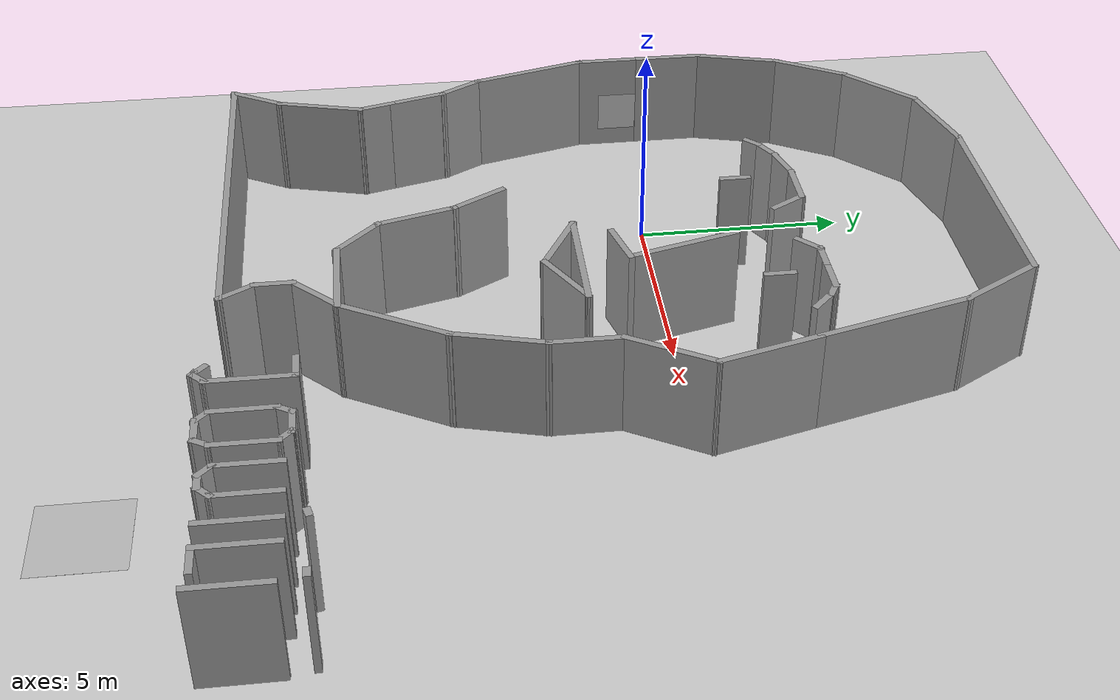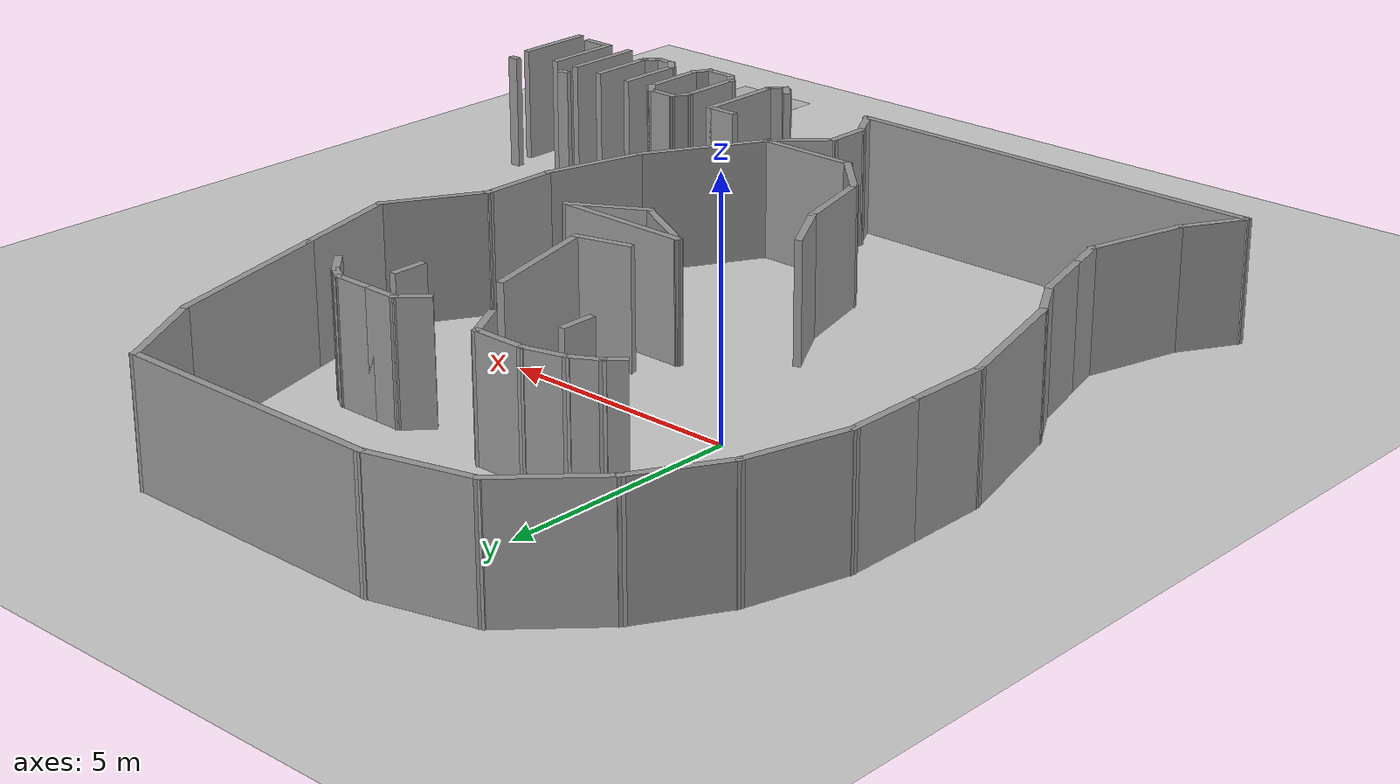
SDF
<sdf version="1.7">
 <world name="default">
  <light name="sun" type="directional">
   <pose>0 0 10 0 -0 0</pose>
   <diffuse>0.8 0.8 0.8 1</diffuse>
   <specular>0.2 0.2 0.2 1</specular>
   <attenuation>
    <range>1000</range>
    <constant>0.9</constant>
    <linear>0.01</linear>
    <quadratic>0.001</quadratic>
   </attenuation>
   <direction>-0.5 0.1 -0.9</direction>
   <spot><inner_angle>0</inner_angle><outer_angle>0</outer_angle><falloff>0</falloff></spot>
  </light>
  <model name="ground_plane">
   <static>1</static>
   <link name="link">
    <collision name="collision">
     <geometry><plane><normal>0 0 1</normal><size>100 100</size></plane></geometry>
     <surface>
      <contact><collide_bitmask>65535</collide_bitmask></contact>
      <friction><ode><mu>100</mu><mu2>50</mu2></ode></friction>
     </surface>
    </collision>
    <visual name="visual">
     <cast_shadows>0</cast_shadows>
     <geometry><plane><normal>0 0 1</normal><size>100 100</size></plane></geometry>
     <material>
      <script><uri>file://media/materials/scripts/gazebo.material</uri><name>Gazebo/Grey</name></script>
     </material>
    </visual>
   </link>
  </model>
  <gravity>0 0 -9.8</gravity>
  <magnetic_field>6e-06 2.3e-05 -4.2e-05</magnetic_field>
  <atmosphere type="adiabatic"/>
  <physics type="ode">
   <max_step_size>0.001</max_step_size>
   <real_time_factor>1</real_time_factor>
   <real_time_update_rate>1000</real_time_update_rate>
  </physics>
  <scene><ambient>0.4 0.4 0.4 1</ambient><background>0.7 0.7 0.7 1</background><shadows>1</shadows></scene>
  <spherical_coordinates>
   <surface_model>EARTH_WGS84</surface_model>
   <latitude_deg>0</latitude_deg>
   <longitude_deg>0</longitude_deg>
   <elevation>0</elevation>
   <heading_deg>0</heading_deg>
  </spherical_coordinates>
  <model name="my_ground_plane">
   <static>1</static>
   <link name="link">
    <collision name="collision">
     <geometry><plane><normal>0 0 1</normal><size>1 1</size></plane></geometry>
     <surface><friction><ode><mu>100</mu><mu2>50</mu2></ode></friction></surface>
    </collision>
    <visual name="visual">
     <cast_shadows>0</cast_shadows>
     <geometry><plane><normal>0 0 1</normal><size>1 1</size></plane></geometry>
     <material>
      <script>
       <uri>model://my_ground_plane/materials/scripts</uri>
       <uri>model://my_ground_plane/materials/textures</uri>
       <name>MyGroundPlane/Image</name>
      </script>
     </material>
    </visual>
   </link>
   <pose>-4.6 0 1 1.5354 0.02 1.6</pose>
  </model>
  <model name="jouili">
   <pose>4.47971 -1.31638 0 0 -0 0</pose>
   <link name="Wall_101">
    <collision name="Wall_101_Collision">
     <geometry><box><size>0.25 0.15 2.5</size></box></geometry>
     <pose>0 0 1.25 0 -0 0</pose>
    </collision>
    <visual name="Wall_101_Visual">
     <pose>0 0 1.25 0 -0 0</pose>
     <geometry><box><size>0.25 0.15 2.5</size></box></geometry>
     <material>
      <script><uri>file://media/materials/scripts/gazebo.material</uri><name>Gazebo/Grey</name></script>
      <ambient>1 1 1 1</ambient>
     </material>
     <meta><layer>0</layer></meta>
    </visual>
    <pose>9.05361 -6.80328 0 0 -0 0</pose>
   </link>
   <link name="Wall_103">
    <collision name="Wall_103_Collision">
     <geometry><box><size>0.5 0.15 2.5</size></box></geometry>
     <pose>0 0 1.25 0 -0 0</pose>
    </collision>
    <visual name="Wall_103_Visual">
     <pose>0 0 1.25 0 -0 0</pose>
     <geometry><box><size>0.5 0.15 2.5</size></box></geometry>
     <material>
      <script><uri>file://media/materials/scripts/gazebo.material</uri><name>Gazebo/Grey</name></script>
      <ambient>1 1 1 1</ambient>
     </material>
     <meta><layer>0</layer></meta>
    </visual>
    <pose>3.02089 -9.02899 0 0 -0 2.35619</pose>
   </link>
   <link name="Wall_11">
    <collision name="Wall_11_Collision">
     <geometry><box><size>1.5 0.15 2.5</size></box></geometry>
     <pose>0 0 1.25 0 -0 0</pose>
    </collision>
    <visual name="Wall_11_Visual">
     <pose>0 0 1.25 0 -0 0</pose>
     <geometry><box><size>1.5 0.15 2.5</size></box></geometry>
     <material>
      <script><uri>file://media/materials/scripts/gazebo.material</uri><name>Gazebo/Grey</name></script>
      <ambient>1 1 1 1</ambient>
     </material>
     <meta><layer>0</layer></meta>
    </visual>
    <pose>-8.22475 -8.14626 0 0 -0 1.0472</pose>
   </link>
   <link name="Wall_12">
    <collision name="Wall_12_Collision">
     <geometry><box><size>2.25 0.15 2.5</size></box></geometry>
     <pose>0 0 1.25 0 -0 0</pose>
    </collision>
    <visual name="Wall_12_Visual">
     <pose>0 0 1.25 0 -0 0</pose>
     <geometry><box><size>2.25 0.15 2.5</size></box></geometry>
     <material>
      <script><uri>file://media/materials/scripts/gazebo.material</uri><name>Gazebo/Grey</name></script>
      <ambient>1 1 1 1</ambient>
     </material>
     <meta><layer>0</layer></meta>
    </visual>
    <pose>-7.61548 -6.54746 0 0 -0 1.309</pose>
   </link>
   <link name="Wall_13">
    <collision name="Wall_13_Collision">
     <geometry><box><size>1 0.15 2.5</size></box></geometry>
     <pose>0 0 1.25 0 -0 0</pose>
    </collision>
    <visual name="Wall_13_Visual">
     <pose>0 0 1.25 0 -0 0</pose>
     <geometry><box><size>1 0.15 2.5</size></box></geometry>
     <material>
      <script><uri>file://media/materials/scripts/gazebo.material</uri><name>Gazebo/Grey</name></script>
      <ambient>1 1 1 1</ambient>
     </material>
     <meta><layer>0</layer></meta>
    </visual>
    <pose>-7.45372 -5.12272 0 0 -0 1.8326</pose>
   </link>
   <link name="Wall_14">
    <collision name="Wall_14_Collision">
     <geometry><box><size>1.5 0.15 2.5</size></box></geometry>
     <pose>0 0 1.25 0 -0 0</pose>
    </collision>
    <visual name="Wall_14_Visual">
     <pose>0 0 1.25 0 -0 0</pose>
     <geometry><box><size>1.5 0.15 2.5</size></box></geometry>
     <material>
      <script><uri>file://media/materials/scripts/gazebo.material</uri><name>Gazebo/Grey</name></script>
      <ambient>1 1 1 1</ambient>
     </material>
     <meta><layer>0</layer></meta>
    </visual>
    <pose>-7.73842 -4.06021 0 0 -0 1.8326</pose>
   </link>
   <link name="Wall_15">
    <collision name="Wall_15_Collision">
     <geometry><box><size>1.25 0.15 2.5</size></box></geometry>
     <pose>0 0 1.25 0 -0 0</pose>
    </collision>
    <visual name="Wall_15_Visual">
     <pose>0 0 1.25 0 -0 0</pose>
     <geometry><box><size>1.25 0.15 2.5</size></box></geometry>
     <material>
      <script><uri>file://media/materials/scripts/gazebo.material</uri><name>Gazebo/Grey</name></script>
      <ambient>1 1 1 1</ambient>
     </material>
     <meta><layer>0</layer></meta>
    </visual>
    <pose>-8.18813 -2.93189 0 0 -0 2.0944</pose>
   </link>
   <link name="Wall_16">
    <collision name="Wall_16_Collision">
     <geometry><box><size>3 0.15 2.5</size></box></geometry>
     <pose>0 0 1.25 0 -0 0</pose>
    </collision>
    <visual name="Wall_16_Visual">
     <pose>0 0 1.25 0 -0 0</pose>
     <geometry><box><size>3 0.15 2.5</size></box></geometry>
     <material>
      <script><uri>file://media/materials/scripts/gazebo.material</uri><name>Gazebo/Grey</name></script>
      <ambient>1 1 1 1</ambient>
     </material>
     <meta><layer>0</layer></meta>
    </visual>
    <pose>-8.83194 -1.07913 0 0 -0 1.8326</pose>
   </link>
   <link name="Wall_17">
    <collision name="Wall_17_Collision">
     <geometry><box><size>1.75 0.15 2.5</size></box></geometry>
     <pose>0 0 1.25 0 -0 0</pose>
    </collision>
    <visual name="Wall_17_Visual">
     <pose>0 0 1.25 0 -0 0</pose>
     <geometry><box><size>1.75 0.15 2.5</size></box></geometry>
     <material>
      <script><uri>file://media/materials/scripts/gazebo.material</uri><name>Gazebo/Grey</name></script>
      <ambient>1 1 1 1</ambient>
     </material>
     <meta><layer>0</layer></meta>
    </visual>
    <pose>-9.20076 1.09731 0 0 -0 1.5708</pose>
   </link>
   <link name="Wall_18">
    <collision name="Wall_18_Collision">
     <geometry><box><size>1.75 0.15 2.5</size></box></geometry>
     <pose>0 0 1.25 0 -0 0</pose>
    </collision>
    <visual name="Wall_18_Visual">
     <pose>0 0 1.25 0 -0 0</pose>
     <geometry><box><size>1.75 0.15 2.5</size></box></geometry>
     <material>
      <script><uri>file://media/materials/scripts/gazebo.material</uri><name>Gazebo/Grey</name></script>
      <ambient>1 1 1 1</ambient>
     </material>
     <meta><layer>0</layer></meta>
    </visual>
    <pose>-9.20076 2.69731 0 0 -0 1.5708</pose>
   </link>
   <link name="Wall_19">
    <collision name="Wall_19_Collision">
     <geometry><box><size>2.25 0.15 2.5</size></box></geometry>
     <pose>0 0 1.25 0 -0 0</pose>
    </collision>
    <visual name="Wall_19_Visual">
     <pose>0 0 1.25 0 -0 0</pose>
     <geometry><box><size>2.25 0.15 2.5</size></box></geometry>
     <material>
      <script><uri>file://media/materials/scripts/gazebo.material</uri><name>Gazebo/Grey</name></script>
      <ambient>1 1 1 1</ambient>
     </material>
     <meta><layer>0</layer></meta>
    </visual>
    <pose>-8.929 4.51153 0 0 -0 1.309</pose>
   </link>
   <link name="Wall_2">
    <collision name="Wall_2_Collision">
     <geometry><box><size>9.25 0.15 2.5</size></box></geometry>
     <pose>0 0 1.25 0 -0 0</pose>
    </collision>
    <visual name="Wall_2_Visual">
     <pose>0 0 1.25 0 -0 0</pose>
     <geometry><box><size>9.25 0.15 2.5</size></box></geometry>
     <material>
      <script><uri>file://media/materials/scripts/gazebo.material</uri><name>Gazebo/Grey</name></script>
      <ambient>1 1 1 1</ambient>
     </material>
     <meta><layer>0</layer></meta>
    </visual>
    <pose>-4.01225 -8.73082 0 0 -0 0</pose>
   </link>
   <link name="Wall_20">
    <collision name="Wall_20_Collision">
     <geometry><box><size>2 0.15 2.5</size></box></geometry>
     <pose>0 0 1.25 0 -0 0</pose>
    </collision>
    <visual name="Wall_20_Visual">
     <pose>0 0 1.25 0 -0 0</pose>
     <geometry><box><size>2 0.15 2.5</size></box></geometry>
     <material>
      <script><uri>file://media/materials/scripts/gazebo.material</uri><name>Gazebo/Grey</name></script>
      <ambient>1 1 1 1</ambient>
     </material>
     <meta><layer>0</layer></meta>
    </visual>
    <pose>-8.19474 6.32683 0 0 -0 1.0472</pose>
   </link>
   <link name="Wall_21">
    <collision name="Wall_21_Collision">
     <geometry><box><size>2.25 0.15 2.5</size></box></geometry>
     <pose>0 0 1.25 0 -0 0</pose>
    </collision>
    <visual name="Wall_21_Visual">
     <pose>0 0 1.25 0 -0 0</pose>
     <geometry><box><size>2.25 0.15 2.5</size></box></geometry>
     <material>
      <script><uri>file://media/materials/scripts/gazebo.material</uri><name>Gazebo/Grey</name></script>
      <ambient>1 1 1 1</ambient>
     </material>
     <meta><layer>0</layer></meta>
    </visual>
    <pose>-6.98978 7.87036 0 0 -0 0.785398</pose>
   </link>
   <link name="Wall_23">
    <collision name="Wall_23_Collision">
     <geometry><box><size>2.25 0.15 2.5</size></box></geometry>
     <pose>0 0 1.25 0 -0 0</pose>
    </collision>
    <visual name="Wall_23_Visual">
     <pose>0 0 1.25 0 -0 0</pose>
     <geometry><box><size>2.25 0.15 2.5</size></box></geometry>
     <material>
      <script><uri>file://media/materials/scripts/gazebo.material</uri><name>Gazebo/Grey</name></script>
      <ambient>1 1 1 1</ambient>
     </material>
     <meta><layer>0</layer></meta>
    </visual>
    <pose>-5.23309 8.88458 0 0 -0 0.261799</pose>
   </link>
   <link name="Wall_24">
    <collision name="Wall_24_Collision">
     <geometry><box><size>5.75 0.15 2.5</size></box></geometry>
     <pose>0 0 1.25 0 -0 0</pose>
    </collision>
    <visual name="Wall_24_Visual">
     <pose>0 0 1.25 0 -0 0</pose>
     <geometry><box><size>5.75 0.15 2.5</size></box></geometry>
     <material>
      <script><uri>file://media/materials/scripts/gazebo.material</uri><name>Gazebo/Grey</name></script>
      <ambient>1 1 1 1</ambient>
     </material>
     <meta><layer>0</layer></meta>
    </visual>
    <pose>-1.41887 9.15634 0 0 -0 0</pose>
   </link>
   <link name="Wall_25">
    <collision name="Wall_25_Collision">
     <geometry><box><size>2.25 0.15 2.5</size></box></geometry>
     <pose>0 0 1.25 0 -0 0</pose>
    </collision>
    <visual name="Wall_25_Visual">
     <pose>0 0 1.25 0 -0 0</pose>
     <geometry><box><size>2.25 0.15 2.5</size></box></geometry>
     <material>
      <script><uri>file://media/materials/scripts/gazebo.material</uri><name>Gazebo/Grey</name></script>
      <ambient>1 1 1 1</ambient>
     </material>
     <meta><layer>0</layer></meta>
    </visual>
    <pose>1.90613 8.24702 0 0 -0 -1.0472</pose>
   </link>
   <link name="Wall_26">
    <collision name="Wall_26_Collision">
     <geometry><box><size>3.75 0.15 2.5</size></box></geometry>
     <pose>0 0 1.25 0 -0 0</pose>
    </collision>
    <visual name="Wall_26_Visual">
     <pose>0 0 1.25 0 -0 0</pose>
     <geometry><box><size>3.75 0.15 2.5</size></box></geometry>
     <material>
      <script><uri>file://media/materials/scripts/gazebo.material</uri><name>Gazebo/Grey</name></script>
      <ambient>1 1 1 1</ambient>
     </material>
     <meta><layer>0</layer></meta>
    </visual>
    <pose>2.897 5.59903 0 0 -0 -1.309</pose>
   </link>
   <link name="Wall_27">
    <collision name="Wall_27_Collision">
     <geometry><box><size>2.5 0.15 2.5</size></box></geometry>
     <pose>0 0 1.25 0 -0 0</pose>
    </collision>
    <visual name="Wall_27_Visual">
     <pose>0 0 1.25 0 -0 0</pose>
     <geometry><box><size>2.5 0.15 2.5</size></box></geometry>
     <material>
      <script><uri>file://media/materials/scripts/gazebo.material</uri><name>Gazebo/Grey</name></script>
      <ambient>1 1 1 1</ambient>
     </material>
     <meta><layer>0</layer></meta>
    </visual>
    <pose>3.66699 2.7254 0 0 -0 -1.309</pose>
   </link>
   <link name="Wall_28">
    <collision name="Wall_28_Collision">
     <geometry><box><size>2.25 0.15 2.5</size></box></geometry>
     <pose>0 0 1.25 0 -0 0</pose>
    </collision>
    <visual name="Wall_28_Visual">
     <pose>0 0 1.25 0 -0 0</pose>
     <geometry><box><size>2.25 0.15 2.5</size></box></geometry>
     <material>
      <script><uri>file://media/materials/scripts/gazebo.material</uri><name>Gazebo/Grey</name></script>
      <ambient>1 1 1 1</ambient>
     </material>
     <meta><layer>0</layer></meta>
    </visual>
    <pose>3.4461 0.681107 0 0 -0 -2.0944</pose>
   </link>
   <link name="Wall_29">
    <collision name="Wall_29_Collision">
     <geometry><box><size>1.75 0.15 2.5</size></box></geometry>
     <pose>0 0 1.25 0 -0 0</pose>
    </collision>
    <visual name="Wall_29_Visual">
     <pose>0 0 1.25 0 -0 0</pose>
     <geometry><box><size>1.75 0.15 2.5</size></box></geometry>
     <material>
      <script><uri>file://media/materials/scripts/gazebo.material</uri><name>Gazebo/Grey</name></script>
      <ambient>1 1 1 1</ambient>
     </material>
     <meta><layer>0</layer></meta>
    </visual>
    <pose>2.9211 -1.02822 0 0 -0 -1.5708</pose>
   </link>
   <link name="Wall_3">
    <collision name="Wall_3_Collision">
     <geometry><box><size>1 0.15 2.5</size></box></geometry>
     <pose>0 0 1.25 0 -0 0</pose>
    </collision>
    <visual name="Wall_3_Visual">
     <pose>0 0 1.25 0 -0 0</pose>
     <geometry><box><size>1 0.15 2.5</size></box></geometry>
     <material>
      <script><uri>file://media/materials/scripts/gazebo.material</uri><name>Gazebo/Grey</name></script>
      <ambient>1 1 1 1</ambient>
     </material>
     <meta><layer>0</layer></meta>
    </visual>
    <pose>0.325255 -8.36276 0 0 -0 2.0944</pose>
   </link>
   <link name="Wall_31">
    <collision name="Wall_31_Collision">
     <geometry><box><size>2.25 0.15 2.5</size></box></geometry>
     <pose>0 0 1.25 0 -0 0</pose>
    </collision>
    <visual name="Wall_31_Visual">
     <pose>0 0 1.25 0 -0 0</pose>
     <geometry><box><size>2.25 0.15 2.5</size></box></geometry>
     <material>
      <script><uri>file://media/materials/scripts/gazebo.material</uri><name>Gazebo/Grey</name></script>
      <ambient>1 1 1 1</ambient>
     </material>
     <meta><layer>0</layer></meta>
    </visual>
    <pose>2.64934 -2.84244 0 0 -0 -1.8326</pose>
   </link>
   <link name="Wall_32">
    <collision name="Wall_32_Collision">
     <geometry><box><size>2.82613 0.15 2.5</size></box></geometry>
     <pose>0 0 1.25 0 -0 0</pose>
    </collision>
    <visual name="Wall_32_Visual">
     <pose>0 0 1.25 0 -0 0</pose>
     <geometry><box><size>2.82613 0.15 2.5</size></box></geometry>
     <material>
      <script><uri>file://media/materials/scripts/gazebo.material</uri><name>Gazebo/Grey</name></script>
      <ambient>1 1 1 1</ambient>
     </material>
     <meta><layer>0</layer></meta>
    </visual>
    <pose>1.72246 -5.02339 0 0 -0 -2.08243</pose>
   </link>
   <link name="Wall_34">
    <collision name="Wall_34_Collision">
     <geometry><box><size>0.5 0.15 2.5</size></box></geometry>
     <pose>0 0 1.25 0 -0 0</pose>
    </collision>
    <visual name="Wall_34_Visual">
     <pose>0 0 1.25 0 -0 0</pose>
     <geometry><box><size>0.5 0.15 2.5</size></box></geometry>
     <material>
      <script><uri>file://media/materials/scripts/gazebo.material</uri><name>Gazebo/Grey</name></script>
      <ambient>1 1 1 1</ambient>
     </material>
     <meta><layer>0</layer></meta>
    </visual>
    <pose>-4.57449 4.03651 0 0 -0 0.785398</pose>
   </link>
   <link name="Wall_35">
    <collision name="Wall_35_Collision">
     <geometry><box><size>0.75 0.15 2.5</size></box></geometry>
     <pose>0 0 1.25 0 -0 0</pose>
    </collision>
    <visual name="Wall_35_Visual">
     <pose>0 0 1.25 0 -0 0</pose>
     <geometry><box><size>0.75 0.15 2.5</size></box></geometry>
     <material>
      <script><uri>file://media/materials/scripts/gazebo.material</uri><name>Gazebo/Grey</name></script>
      <ambient>1 1 1 1</ambient>
     </material>
     <meta><layer>0</layer></meta>
    </visual>
    <pose>-4.19094 4.31026 0 0 -0 0.523599</pose>
   </link>
   <link name="Wall_36">
    <collision name="Wall_36_Collision">
     <geometry><box><size>1 0.15 2.5</size></box></geometry>
     <pose>0 0 1.25 0 -0 0</pose>
    </collision>
    <visual name="Wall_36_Visual">
     <pose>0 0 1.25 0 -0 0</pose>
     <geometry><box><size>1 0.15 2.5</size></box></geometry>
     <material>
      <script><uri>file://media/materials/scripts/gazebo.material</uri><name>Gazebo/Grey</name></script>
      <ambient>1 1 1 1</ambient>
     </material>
     <meta><layer>0</layer></meta>
    </visual>
    <pose>-3.52061 4.57025 0 0 -0 0.261799</pose>
   </link>
   <link name="Wall_37">
    <collision name="Wall_37_Collision">
     <geometry><box><size>1.25 0.15 2.5</size></box></geometry>
     <pose>0 0 1.25 0 -0 0</pose>
    </collision>
    <visual name="Wall_37_Visual">
     <pose>0 0 1.25 0 -0 0</pose>
     <geometry><box><size>1.25 0.15 2.5</size></box></geometry>
     <material>
      <script><uri>file://media/materials/scripts/gazebo.material</uri><name>Gazebo/Grey</name></script>
      <ambient>1 1 1 1</ambient>
     </material>
     <meta><layer>0</layer></meta>
    </visual>
    <pose>-2.56009 4.68025 0 0 -0 0</pose>
   </link>
   <link name="Wall_38">
    <collision name="Wall_38_Collision">
     <geometry><box><size>1 0.15 2.5</size></box></geometry>
     <pose>0 0 1.25 0 -0 0</pose>
    </collision>
    <visual name="Wall_38_Visual">
     <pose>0 0 1.25 0 -0 0</pose>
     <geometry><box><size>1 0.15 2.5</size></box></geometry>
     <material>
      <script><uri>file://media/materials/scripts/gazebo.material</uri><name>Gazebo/Grey</name></script>
      <ambient>1 1 1 1</ambient>
     </material>
     <meta><layer>0</layer></meta>
    </visual>
    <pose>-1.79759 4.31219 0 0 -0 -1.0472</pose>
   </link>
   <link name="Wall_4">
    <collision name="Wall_4_Collision">
     <geometry><box><size>1 0.15 2.5</size></box></geometry>
     <pose>0 0 1.25 0 -0 0</pose>
    </collision>
    <visual name="Wall_4_Visual">
     <pose>0 0 1.25 0 -0 0</pose>
     <geometry><box><size>1 0.15 2.5</size></box></geometry>
     <material>
      <script><uri>file://media/materials/scripts/gazebo.material</uri><name>Gazebo/Grey</name></script>
      <ambient>1 1 1 1</ambient>
     </material>
     <meta><layer>0</layer></meta>
    </visual>
    <pose>0.112755 -7.5697 0 0 -0 1.5708</pose>
   </link>
   <link name="Wall_40">
    <collision name="Wall_40_Collision">
     <geometry><box><size>0.75 0.15 2.5</size></box></geometry>
     <pose>0 0 1.25 0 -0 0</pose>
    </collision>
    <visual name="Wall_40_Visual">
     <pose>0 0 1.25 0 -0 0</pose>
     <geometry><box><size>0.75 0.15 2.5</size></box></geometry>
     <material>
      <script><uri>file://media/materials/scripts/gazebo.material</uri><name>Gazebo/Grey</name></script>
      <ambient>1 1 1 1</ambient>
     </material>
     <meta><layer>0</layer></meta>
    </visual>
    <pose>-2.98615 3.29175 0 0 -0 -1.5708</pose>
   </link>
   <link name="Wall_42">
    <collision name="Wall_42_Collision">
     <geometry><box><size>0.75 0.15 2.5</size></box></geometry>
     <pose>0 0 1.25 0 -0 0</pose>
    </collision>
    <visual name="Wall_42_Visual">
     <pose>0 0 1.25 0 -0 0</pose>
     <geometry><box><size>0.75 0.15 2.5</size></box></geometry>
     <material>
      <script><uri>file://media/materials/scripts/gazebo.material</uri><name>Gazebo/Grey</name></script>
      <ambient>1 1 1 1</ambient>
     </material>
     <meta><layer>0</layer></meta>
    </visual>
    <pose>-0.045393 4.39241 0 0 -0 0.785398</pose>
   </link>
   <link name="Wall_43">
    <collision name="Wall_43_Collision">
     <geometry><box><size>0.75 0.15 2.5</size></box></geometry>
     <pose>0 0 1.25 0 -0 0</pose>
    </collision>
    <visual name="Wall_43_Visual">
     <pose>0 0 1.25 0 -0 0</pose>
     <geometry><box><size>0.75 0.15 2.5</size></box></geometry>
     <material>
      <script><uri>file://media/materials/scripts/gazebo.material</uri><name>Gazebo/Grey</name></script>
      <ambient>1 1 1 1</ambient>
     </material>
     <meta><layer>0</layer></meta>
    </visual>
    <pose>0.466739 4.60454 0 0 -0 0</pose>
   </link>
   <link name="Wall_44">
    <collision name="Wall_44_Collision">
     <geometry><box><size>1 0.15 2.5</size></box></geometry>
     <pose>0 0 1.25 0 -0 0</pose>
    </collision>
    <visual name="Wall_44_Visual">
     <pose>0 0 1.25 0 -0 0</pose>
     <geometry><box><size>1 0.15 2.5</size></box></geometry>
     <material>
      <script><uri>file://media/materials/scripts/gazebo.material</uri><name>Gazebo/Grey</name></script>
      <ambient>1 1 1 1</ambient>
     </material>
     <meta><layer>0</layer></meta>
    </visual>
    <pose>1.19174 4.60454 0 0 -0 0</pose>
   </link>
   <link name="Wall_45">
    <collision name="Wall_45_Collision">
     <geometry><box><size>0.5 0.15 2.5</size></box></geometry>
     <pose>0 0 1.25 0 -0 0</pose>
    </collision>
    <visual name="Wall_45_Visual">
     <pose>0 0 1.25 0 -0 0</pose>
     <geometry><box><size>0.5 0.15 2.5</size></box></geometry>
     <material>
      <script><uri>file://media/materials/scripts/gazebo.material</uri><name>Gazebo/Grey</name></script>
      <ambient>1 1 1 1</ambient>
     </material>
     <meta><layer>0</layer></meta>
    </visual>
    <pose>1.76829 4.51705 0 0 -0 -0.523599</pose>
   </link>
   <link name="Wall_46">
    <collision name="Wall_46_Collision">
     <geometry><box><size>0.75 0.15 2.5</size></box></geometry>
     <pose>0 0 1.25 0 -0 0</pose>
    </collision>
    <visual name="Wall_46_Visual">
     <pose>0 0 1.25 0 -0 0</pose>
     <geometry><box><size>0.75 0.15 2.5</size></box></geometry>
     <material>
      <script><uri>file://media/materials/scripts/gazebo.material</uri><name>Gazebo/Grey</name></script>
      <ambient>1 1 1 1</ambient>
     </material>
     <meta><layer>0</layer></meta>
    </visual>
    <pose>2.13198 4.21741 0 0 -0 -0.785398</pose>
   </link>
   <link name="Wall_48">
    <collision name="Wall_48_Collision">
     <geometry><box><size>0.75 0.15 2.5</size></box></geometry>
     <pose>0 0 1.25 0 -0 0</pose>
    </collision>
    <visual name="Wall_48_Visual">
     <pose>0 0 1.25 0 -0 0</pose>
     <geometry><box><size>0.75 0.15 2.5</size></box></geometry>
     <material>
      <script><uri>file://media/materials/scripts/gazebo.material</uri><name>Gazebo/Grey</name></script>
      <ambient>1 1 1 1</ambient>
     </material>
     <meta><layer>0</layer></meta>
    </visual>
    <pose>1.02653 3.50576 0 0 -0 -1.5708</pose>
   </link>
   <link name="Wall_5">
    <collision name="Wall_5_Collision">
     <geometry><box><size>1.5 0.15 2.5</size></box></geometry>
     <pose>0 0 1.25 0 -0 0</pose>
    </collision>
    <visual name="Wall_5_Visual">
     <pose>0 0 1.25 0 -0 0</pose>
     <geometry><box><size>1.5 0.15 2.5</size></box></geometry>
     <material>
      <script><uri>file://media/materials/scripts/gazebo.material</uri><name>Gazebo/Grey</name></script>
      <ambient>1 1 1 1</ambient>
     </material>
     <meta><layer>0</layer></meta>
    </visual>
    <pose>0.590052 -6.6674 0 0 -0 0.785398</pose>
   </link>
   <link name="Wall_50">
    <collision name="Wall_50_Collision">
     <geometry><box><size>3 0.15 2.5</size></box></geometry>
     <pose>0 0 1.25 0 -0 0</pose>
    </collision>
    <visual name="Wall_50_Visual">
     <pose>0 0 1.25 0 -0 0</pose>
     <geometry><box><size>3 0.15 2.5</size></box></geometry>
     <material>
      <script><uri>file://media/materials/scripts/gazebo.material</uri><name>Gazebo/Grey</name></script>
      <ambient>1 1 1 1</ambient>
     </material>
     <meta><layer>0</layer></meta>
    </visual>
    <pose>-0.063083 -0.795451 0 0 -0 0</pose>
   </link>
   <link name="Wall_51">
    <collision name="Wall_51_Collision">
     <geometry><box><size>1.75 0.15 2.5</size></box></geometry>
     <pose>0 0 1.25 0 -0 0</pose>
    </collision>
    <visual name="Wall_51_Visual">
     <pose>0 0 1.25 0 -0 0</pose>
     <geometry><box><size>1.75 0.15 2.5</size></box></geometry>
     <material>
      <script><uri>file://media/materials/scripts/gazebo.material</uri><name>Gazebo/Grey</name></script>
      <ambient>1 1 1 1</ambient>
     </material>
     <meta><layer>0</layer></meta>
    </visual>
    <pose>0.669097 -1.19545 0 0 -0 -2.61799</pose>
   </link>
   <link name="Wall_52">
    <collision name="Wall_52_Collision">
     <geometry><box><size>1.81864 0.15 2.5</size></box></geometry>
     <pose>0 0 1.25 0 -0 0</pose>
    </collision>
    <visual name="Wall_52_Visual">
     <pose>0 0 1.25 0 -0 0</pose>
     <geometry><box><size>1.81864 0.15 2.5</size></box></geometry>
     <material>
      <script><uri>file://media/materials/scripts/gazebo.material</uri><name>Gazebo/Grey</name></script>
      <ambient>1 1 1 1</ambient>
     </material>
     <meta><layer>0</layer></meta>
    </visual>
    <pose>-0.755903 -1.19545 0 0 -0 2.64158</pose>
   </link>
   <link name="Wall_54">
    <collision name="Wall_54_Collision">
     <geometry><box><size>2.75 0.15 2.5</size></box></geometry>
     <pose>0 0 1.25 0 -0 0</pose>
    </collision>
    <visual name="Wall_54_Visual">
     <pose>0 0 1.25 0 -0 0</pose>
     <geometry><box><size>2.75 0.15 2.5</size></box></geometry>
     <material>
      <script><uri>file://media/materials/scripts/gazebo.material</uri><name>Gazebo/Grey</name></script>
      <ambient>1 1 1 1</ambient>
     </material>
     <meta><layer>0</layer></meta>
    </visual>
    <pose>-0.349081 1.58702 0 0 -0 -1.309</pose>
   </link>
   <link name="Wall_55">
    <collision name="Wall_55_Collision">
     <geometry><box><size>1.25 0.15 2.5</size></box></geometry>
     <pose>0 0 1.25 0 -0 0</pose>
    </collision>
    <visual name="Wall_55_Visual">
     <pose>0 0 1.25 0 -0 0</pose>
     <geometry><box><size>1.25 0.15 2.5</size></box></geometry>
     <material>
      <script><uri>file://media/materials/scripts/gazebo.material</uri><name>Gazebo/Grey</name></script>
      <ambient>1 1 1 1</ambient>
     </material>
     <meta><layer>0</layer></meta>
    </visual>
    <pose>-0.543875 0.188961 0 0 -0 -2.87979</pose>
   </link>
   <link name="Wall_57">
    <collision name="Wall_57_Collision">
     <geometry><box><size>0.75 0.15 2.5</size></box></geometry>
     <pose>0 0 1.25 0 -0 0</pose>
    </collision>
    <visual name="Wall_57_Visual">
     <pose>0 0 1.25 0 -0 0</pose>
     <geometry><box><size>0.75 0.15 2.5</size></box></geometry>
     <material>
      <script><uri>file://media/materials/scripts/gazebo.material</uri><name>Gazebo/Grey</name></script>
      <ambient>1 1 1 1</ambient>
     </material>
     <meta><layer>0</layer></meta>
    </visual>
    <pose>3.09212 -7.05524 0 0 -0 0</pose>
   </link>
   <link name="Wall_59">
    <collision name="Wall_59_Collision">
     <geometry><box><size>2 0.15 2.5</size></box></geometry>
     <pose>0 0 1.25 0 -0 0</pose>
    </collision>
    <visual name="Wall_59_Visual">
     <pose>0 0 1.25 0 -0 0</pose>
     <geometry><box><size>2 0.15 2.5</size></box></geometry>
     <material>
      <script><uri>file://media/materials/scripts/gazebo.material</uri><name>Gazebo/Grey</name></script>
      <ambient>1 1 1 1</ambient>
     </material>
     <meta><layer>0</layer></meta>
    </visual>
    <pose>3.39212 -7.98024 0 0 -0 -1.5708</pose>
   </link>
   <link name="Wall_6">
    <collision name="Wall_6_Collision">
     <geometry><box><size>2.25 0.15 2.5</size></box></geometry>
     <pose>0 0 1.25 0 -0 0</pose>
    </collision>
    <visual name="Wall_6_Visual">
     <pose>0 0 1.25 0 -0 0</pose>
     <geometry><box><size>2.25 0.15 2.5</size></box></geometry>
     <material>
      <script><uri>file://media/materials/scripts/gazebo.material</uri><name>Gazebo/Grey</name></script>
      <ambient>1 1 1 1</ambient>
     </material>
     <meta><layer>0</layer></meta>
    </visual>
    <pose>0.017349 -6.19011 0 0 -0 3.14159</pose>
   </link>
   <link name="Wall_60">
    <collision name="Wall_60_Collision">
     <geometry><box><size>0.5 0.15 2.5</size></box></geometry>
     <pose>0 0 1.25 0 -0 0</pose>
    </collision>
    <visual name="Wall_60_Visual">
     <pose>0 0 1.25 0 -0 0</pose>
     <geometry><box><size>0.5 0.15 2.5</size></box></geometry>
     <material>
      <script><uri>file://media/materials/scripts/gazebo.material</uri><name>Gazebo/Grey</name></script>
      <ambient>1 1 1 1</ambient>
     </material>
     <meta><layer>0</layer></meta>
    </visual>
    <pose>3.26837 -9.02899 0 0 -0 -2.35619</pose>
   </link>
   <link name="Wall_61">
    <collision name="Wall_61_Collision">
     <geometry><box><size>0.25 0.15 2.5</size></box></geometry>
     <pose>0 0 1.25 0 -0 0</pose>
    </collision>
    <visual name="Wall_61_Visual">
     <pose>0 0 1.25 0 -0 0</pose>
     <geometry><box><size>0.25 0.15 2.5</size></box></geometry>
     <material>
      <script><uri>file://media/materials/scripts/gazebo.material</uri><name>Gazebo/Grey</name></script>
      <ambient>1 1 1 1</ambient>
     </material>
     <meta><layer>0</layer></meta>
    </visual>
    <pose>3.10133 -9.12773 0 0 -0 2.61799</pose>
   </link>
   <link name="Wall_63">
    <collision name="Wall_63_Collision">
     <geometry><box><size>0.75 0.15 2.5</size></box></geometry>
     <pose>0 0 1.25 0 -0 0</pose>
    </collision>
    <visual name="Wall_63_Visual">
     <pose>0 0 1.25 0 -0 0</pose>
     <geometry><box><size>0.75 0.15 2.5</size></box></geometry>
     <material>
      <script><uri>file://media/materials/scripts/gazebo.material</uri><name>Gazebo/Grey</name></script>
      <ambient>1 1 1 1</ambient>
     </material>
     <meta><layer>0</layer></meta>
    </visual>
    <pose>4.84623 -7.10875 0 0 -0 3.14159</pose>
   </link>
   <link name="Wall_64">
    <collision name="Wall_64_Collision">
     <geometry><box><size>0.5 0.15 2.5</size></box></geometry>
     <pose>0 0 1.25 0 -0 0</pose>
    </collision>
    <visual name="Wall_64_Visual">
     <pose>0 0 1.25 0 -0 0</pose>
     <geometry><box><size>0.5 0.15 2.5</size></box></geometry>
     <material>
      <script><uri>file://media/materials/scripts/gazebo.material</uri><name>Gazebo/Grey</name></script>
      <ambient>1 1 1 1</ambient>
     </material>
     <meta><layer>0</layer></meta>
    </visual>
    <pose>4.45873 -7.2603 0 0 -0 -2.0944</pose>
   </link>
   <link name="Wall_65">
    <collision name="Wall_65_Collision">
     <geometry><box><size>1.5 0.15 2.5</size></box></geometry>
     <pose>0 0 1.25 0 -0 0</pose>
    </collision>
    <visual name="Wall_65_Visual">
     <pose>0 0 1.25 0 -0 0</pose>
     <geometry><box><size>1.5 0.15 2.5</size></box></geometry>
     <material>
      <script><uri>file://media/materials/scripts/gazebo.material</uri><name>Gazebo/Grey</name></script>
      <ambient>1 1 1 1</ambient>
     </material>
     <meta><layer>0</layer></meta>
    </visual>
    <pose>4.37123 -8.08685 0 0 -0 -1.5708</pose>
   </link>
   <link name="Wall_66">
    <collision name="Wall_66_Collision">
     <geometry><box><size>0.5 0.15 2.5</size></box></geometry>
     <pose>0 0 1.25 0 -0 0</pose>
    </collision>
    <visual name="Wall_66_Visual">
     <pose>0 0 1.25 0 -0 0</pose>
     <geometry><box><size>0.5 0.15 2.5</size></box></geometry>
     <material>
      <script><uri>file://media/materials/scripts/gazebo.material</uri><name>Gazebo/Grey</name></script>
      <ambient>1 1 1 1</ambient>
     </material>
     <meta><layer>0</layer></meta>
    </visual>
    <pose>4.49497 -8.8856 0 0 -0 -0.785398</pose>
   </link>
   <link name="Wall_7">
    <collision name="Wall_7_Collision">
     <geometry><box><size>1.5 0.15 2.5</size></box></geometry>
     <pose>0 0 1.25 0 -0 0</pose>
    </collision>
    <visual name="Wall_7_Visual">
     <pose>0 0 1.25 0 -0 0</pose>
     <geometry><box><size>1.5 0.15 2.5</size></box></geometry>
     <material>
      <script><uri>file://media/materials/scripts/gazebo.material</uri><name>Gazebo/Grey</name></script>
      <ambient>1 1 1 1</ambient>
     </material>
     <meta><layer>0</layer></meta>
    </visual>
    <pose>-1.50995 -5.71281 0 0 -0 2.35619</pose>
   </link>
   <link name="Wall_70">
    <collision name="Wall_70_Collision">
     <geometry><box><size>0.15 0.15 2.5</size></box></geometry>
     <pose>0 0 1.25 0 -0 0</pose>
    </collision>
    <visual name="Wall_70_Visual">
     <pose>0 0 1.25 0 -0 0</pose>
     <geometry><box><size>0.15 0.15 2.5</size></box></geometry>
     <material>
      <script><uri>file://media/materials/scripts/gazebo.material</uri><name>Gazebo/Grey</name></script>
      <ambient>1 1 1 1</ambient>
     </material>
     <meta><layer>0</layer></meta>
    </visual>
    <pose>5.14623 -7.10875 0 0 -0 0</pose>
   </link>
   <link name="Wall_72">
    <collision name="Wall_72_Collision">
     <geometry><box><size>0.5 0.15 2.5</size></box></geometry>
     <pose>0 0 1.25 0 -0 0</pose>
    </collision>
    <visual name="Wall_72_Visual">
     <pose>0 0 1.25 0 -0 0</pose>
     <geometry><box><size>0.5 0.15 2.5</size></box></geometry>
     <material>
      <script><uri>file://media/materials/scripts/gazebo.material</uri><name>Gazebo/Grey</name></script>
      <ambient>1 1 1 1</ambient>
     </material>
     <meta><layer>0</layer></meta>
    </visual>
    <pose>5.26997 -7.23249 0 0 -0 -0.785398</pose>
   </link>
   <link name="Wall_73">
    <collision name="Wall_73_Collision">
     <geometry><box><size>1.5 0.15 2.5</size></box></geometry>
     <pose>0 0 1.25 0 -0 0</pose>
    </collision>
    <visual name="Wall_73_Visual">
     <pose>0 0 1.25 0 -0 0</pose>
     <geometry><box><size>1.5 0.15 2.5</size></box></geometry>
     <material>
      <script><uri>file://media/materials/scripts/gazebo.material</uri><name>Gazebo/Grey</name></script>
      <ambient>1 1 1 1</ambient>
     </material>
     <meta><layer>0</layer></meta>
    </visual>
    <pose>5.39372 -8.03123 0 0 -0 -1.5708</pose>
   </link>
   <link name="Wall_74">
    <collision name="Wall_74_Collision">
     <geometry><box><size>0.5 0.15 2.5</size></box></geometry>
     <pose>0 0 1.25 0 -0 0</pose>
    </collision>
    <visual name="Wall_74_Visual">
     <pose>0 0 1.25 0 -0 0</pose>
     <geometry><box><size>0.5 0.15 2.5</size></box></geometry>
     <material>
      <script><uri>file://media/materials/scripts/gazebo.material</uri><name>Gazebo/Grey</name></script>
      <ambient>1 1 1 1</ambient>
     </material>
     <meta><layer>0</layer></meta>
    </visual>
    <pose>5.30621 -8.85779 0 0 -0 -2.0944</pose>
   </link>
   <link name="Wall_75">
    <collision name="Wall_75_Collision">
     <geometry><box><size>0.75 0.15 2.5</size></box></geometry>
     <pose>0 0 1.25 0 -0 0</pose>
    </collision>
    <visual name="Wall_75_Visual">
     <pose>0 0 1.25 0 -0 0</pose>
     <geometry><box><size>0.75 0.15 2.5</size></box></geometry>
     <material>
      <script><uri>file://media/materials/scripts/gazebo.material</uri><name>Gazebo/Grey</name></script>
      <ambient>1 1 1 1</ambient>
     </material>
     <meta><layer>0</layer></meta>
    </visual>
    <pose>4.91871 -9.00934 0 0 -0 3.14159</pose>
   </link>
   <link name="Wall_77">
    <collision name="Wall_77_Collision">
     <geometry><box><size>1.5 0.15 2.5</size></box></geometry>
     <pose>0 0 1.25 0 -0 0</pose>
    </collision>
    <visual name="Wall_77_Visual">
     <pose>0 0 1.25 0 -0 0</pose>
     <geometry><box><size>1.5 0.15 2.5</size></box></geometry>
     <material>
      <script><uri>file://media/materials/scripts/gazebo.material</uri><name>Gazebo/Grey</name></script>
      <ambient>1 1 1 1</ambient>
     </material>
     <meta><layer>0</layer></meta>
    </visual>
    <pose>6.00227 -7.94425 0 0 -0 -1.5708</pose>
   </link>
   <link name="Wall_78">
    <collision name="Wall_78_Collision">
     <geometry><box><size>0.5 0.15 2.5</size></box></geometry>
     <pose>0 0 1.25 0 -0 0</pose>
    </collision>
    <visual name="Wall_78_Visual">
     <pose>0 0 1.25 0 -0 0</pose>
     <geometry><box><size>0.5 0.15 2.5</size></box></geometry>
     <material>
      <script><uri>file://media/materials/scripts/gazebo.material</uri><name>Gazebo/Grey</name></script>
      <ambient>1 1 1 1</ambient>
     </material>
     <meta><layer>0</layer></meta>
    </visual>
    <pose>6.12601 -8.743 0 0 -0 -0.785398</pose>
   </link>
   <link name="Wall_8">
    <collision name="Wall_8_Collision">
     <geometry><box><size>2 0.15 2.5</size></box></geometry>
     <pose>0 0 1.25 0 -0 0</pose>
    </collision>
    <visual name="Wall_8_Visual">
     <pose>0 0 1.25 0 -0 0</pose>
     <geometry><box><size>2 0.15 2.5</size></box></geometry>
     <material>
      <script><uri>file://media/materials/scripts/gazebo.material</uri><name>Gazebo/Grey</name></script>
      <ambient>1 1 1 1</ambient>
     </material>
     <meta><layer>0</layer></meta>
    </visual>
    <pose>-2.22665 -4.34203 0 0 -0 1.8326</pose>
   </link>
   <link name="Wall_81">
    <collision name="Wall_81_Collision">
     <geometry><box><size>0.5 0.15 2.5</size></box></geometry>
     <pose>0 0 1.25 0 -0 0</pose>
    </collision>
    <visual name="Wall_81_Visual">
     <pose>0 0 1.25 0 -0 0</pose>
     <geometry><box><size>0.5 0.15 2.5</size></box></geometry>
     <material>
      <script><uri>file://media/materials/scripts/gazebo.material</uri><name>Gazebo/Grey</name></script>
      <ambient>1 1 1 1</ambient>
     </material>
     <meta><layer>0</layer></meta>
    </visual>
    <pose>6.42476 -8.86674 0 0 -0 0</pose>
   </link>
   <link name="Wall_82">
    <collision name="Wall_82_Collision">
     <geometry><box><size>0.5 0.15 2.5</size></box></geometry>
     <pose>0 0 1.25 0 -0 0</pose>
    </collision>
    <visual name="Wall_82_Visual">
     <pose>0 0 1.25 0 -0 0</pose>
     <geometry><box><size>0.5 0.15 2.5</size></box></geometry>
     <material>
      <script><uri>file://media/materials/scripts/gazebo.material</uri><name>Gazebo/Grey</name></script>
      <ambient>1 1 1 1</ambient>
     </material>
     <meta><layer>0</layer></meta>
    </visual>
    <pose>6.7235 -8.743 0 0 -0 0.785398</pose>
   </link>
   <link name="Wall_85">
    <collision name="Wall_85_Collision">
     <geometry><box><size>1.5 0.15 2.5</size></box></geometry>
     <pose>0 0 1.25 0 -0 0</pose>
    </collision>
    <visual name="Wall_85_Visual">
     <pose>0 0 1.25 0 -0 0</pose>
     <geometry><box><size>1.5 0.15 2.5</size></box></geometry>
     <material>
      <script><uri>file://media/materials/scripts/gazebo.material</uri><name>Gazebo/Grey</name></script>
      <ambient>1 1 1 1</ambient>
     </material>
     <meta><layer>0</layer></meta>
    </visual>
    <pose>6.84724 -7.94425 0 0 -0 1.5708</pose>
   </link>
   <link name="Wall_89">
    <collision name="Wall_89_Collision">
     <geometry><box><size>1.75 0.15 2.5</size></box></geometry>
     <pose>0 0 1.25 0 -0 0</pose>
    </collision>
    <visual name="Wall_89_Visual">
     <pose>0 0 1.25 0 -0 0</pose>
     <geometry><box><size>1.75 0.15 2.5</size></box></geometry>
     <material>
      <script><uri>file://media/materials/scripts/gazebo.material</uri><name>Gazebo/Grey</name></script>
      <ambient>1 1 1 1</ambient>
     </material>
     <meta><layer>0</layer></meta>
    </visual>
    <pose>7.56945 -8.0776 0 0 -0 -1.5708</pose>
   </link>
   <link name="Wall_9">
    <collision name="Wall_9_Collision">
     <geometry><box><size>1.5 0.15 2.5</size></box></geometry>
     <pose>0 0 1.25 0 -0 0</pose>
    </collision>
    <visual name="Wall_9_Visual">
     <pose>0 0 1.25 0 -0 0</pose>
     <geometry><box><size>1.5 0.15 2.5</size></box></geometry>
     <material>
      <script><uri>file://media/materials/scripts/gazebo.material</uri><name>Gazebo/Grey</name></script>
      <ambient>1 1 1 1</ambient>
     </material>
     <meta><layer>0</layer></meta>
    </visual>
    <pose>-2.80356 -2.86398 0 0 -0 2.0944</pose>
   </link>
   <link name="Wall_93">
    <collision name="Wall_93_Collision">
     <geometry><box><size>1.75 0.15 2.5</size></box></geometry>
     <pose>0 0 1.25 0 -0 0</pose>
    </collision>
    <visual name="Wall_93_Visual">
     <pose>0 0 1.25 0 -0 0</pose>
     <geometry><box><size>1.75 0.15 2.5</size></box></geometry>
     <material>
      <script><uri>file://media/materials/scripts/gazebo.material</uri><name>Gazebo/Grey</name></script>
      <ambient>1 1 1 1</ambient>
     </material>
     <meta><layer>0</layer></meta>
    </visual>
    <pose>8.20107 -8.0848 0 0 -0 -1.5708</pose>
   </link>
   <link name="Wall_94">
    <collision name="Wall_94_Collision">
     <geometry><box><size>0.75 0.15 2.5</size></box></geometry>
     <pose>0 0 1.25 0 -0 0</pose>
    </collision>
    <visual name="Wall_94_Visual">
     <pose>0 0 1.25 0 -0 0</pose>
     <geometry><box><size>0.75 0.15 2.5</size></box></geometry>
     <material>
      <script><uri>file://media/materials/scripts/gazebo.material</uri><name>Gazebo/Grey</name></script>
      <ambient>1 1 1 1</ambient>
     </material>
     <meta><layer>0</layer></meta>
    </visual>
    <pose>8.50107 -8.8848 0 0 -0 0</pose>
   </link>
   <link name="Wall_96">
    <collision name="Wall_96_Collision">
     <geometry><box><size>1.75 0.15 2.5</size></box></geometry>
     <pose>0 0 1.25 0 -0 0</pose>
    </collision>
    <visual name="Wall_96_Visual">
     <pose>0 0 1.25 0 -0 0</pose>
     <geometry><box><size>1.75 0.15 2.5</size></box></geometry>
     <material>
      <script><uri>file://media/materials/scripts/gazebo.material</uri><name>Gazebo/Grey</name></script>
      <ambient>1 1 1 1</ambient>
     </material>
     <meta><layer>0</layer></meta>
    </visual>
    <pose>9.21762 -8.19181 0 0 -0 -1.5708</pose>
   </link>
   <link name="Wall_98">
    <collision name="Wall_98_Collision">
     <geometry><box><size>0.25 0.15 2.5</size></box></geometry>
     <pose>0 0 1.25 0 -0 0</pose>
    </collision>
    <visual name="Wall_98_Visual">
     <pose>0 0 1.25 0 -0 0</pose>
     <geometry><box><size>0.25 0.15 2.5</size></box></geometry>
     <material>
      <script><uri>file://media/materials/scripts/gazebo.material</uri><name>Gazebo/Grey</name></script>
      <ambient>1 1 1 1</ambient>
     </material>
     <meta><layer>0</layer></meta>
    </visual>
    <pose>7.50033 -6.79034 0 0 -0 0.261799</pose>
   </link>
   <static>1</static>
  </model>
  <light name="user_spot_light_1" type="spot">
   <pose>-3.4953 0.873188 1 0 -0 0</pose>
   <diffuse>0.5 0.5 0.5 1</diffuse>
   <specular>0.1 0.1 0.1 1</specular>
   <direction>0 0 -1</direction>
   <attenuation>
    <range>20</range>
    <constant>0.5</constant>
    <linear>0.01</linear>
    <quadratic>0.001</quadratic>
   </attenuation>
   <cast_shadows>0</cast_shadows>
   <spot><inner_angle>0.6</inner_angle><outer_angle>1</outer_angle><falloff>1</falloff></spot>
  </light>
  <model name="my_ground_plane_0">
   <static>1</static>
   <link name="link">
    <collision name="collision">
     <geometry><plane><normal>0 0 1</normal><size>2 2</size></plane></geometry>
     <surface><friction><ode><mu>100</mu><mu2>50</mu2></ode></friction></surface>
    </collision>
    <visual name="visual">
     <cast_shadows>0</cast_shadows>
     <geometry><plane><normal>0 0 1</normal><size>2 2</size></plane></geometry>
     <material>
      <script>
       <uri>model://my_ground_plane/materials/scripts</uri>
       <uri>model://my_ground_plane/materials/textures</uri>
       <name>MyGroundPlane/Image</name>
      </script>
     </material>
    </visual>
   </link>
   <pose>10.5634 -12.601 1 0 -0 0</pose>
  </model>
 </world>
</sdf>
